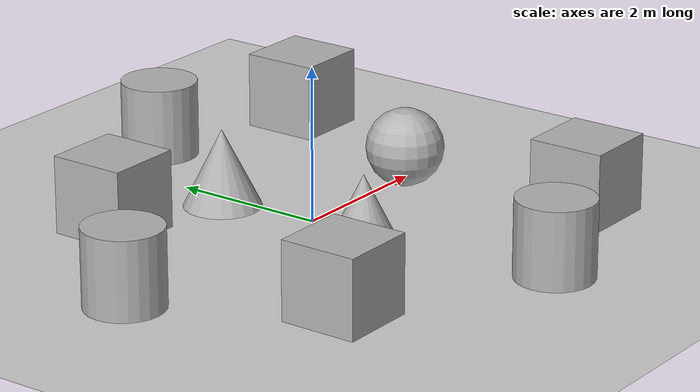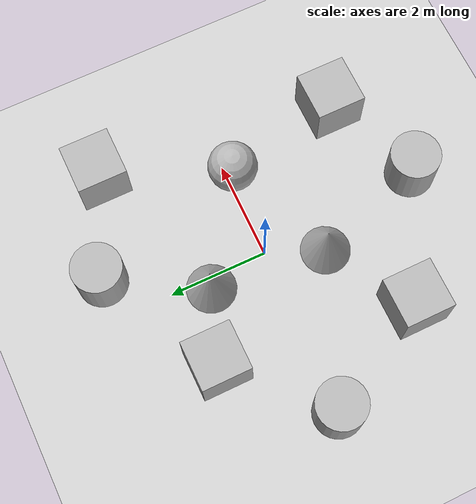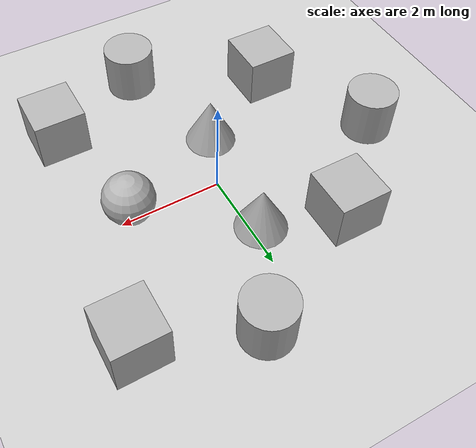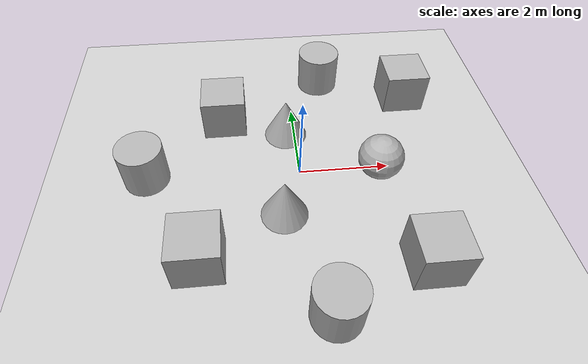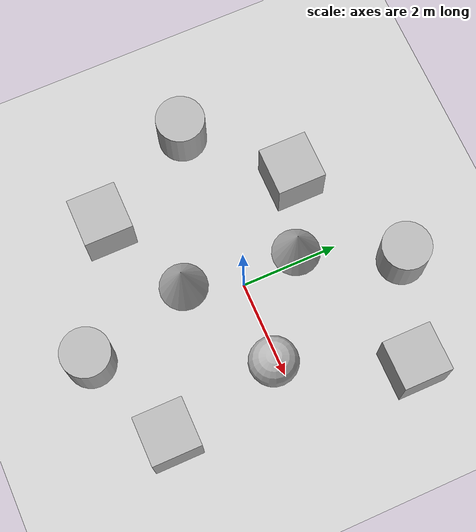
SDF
<sdf version='1.10'>
  <world name='empty'>
    <physics name='1ms' type='ignored'>
      <max_step_size>0.001</max_step_size>
      <real_time_factor>1</real_time_factor>
      <real_time_update_rate>1000</real_time_update_rate>
    </physics>
    <plugin name='gz::sim::systems::Physics' filename='gz-sim-physics-system'/>
    <plugin name='gz::sim::systems::UserCommands' filename='gz-sim-user-commands-system'/>
    <plugin name='gz::sim::systems::SceneBroadcaster' filename='gz-sim-scene-broadcaster-system'/>
    <plugin name='gz::sim::systems::Sensors' filename='gz-sim-sensors-system'>
      <render_engine>ogre2</render_engine>
    </plugin>
    <plugin name="gz::sim::systems::Imu" filename="gz-sim-imu-system" />
    <plugin name='gz::sim::systems::Contact' filename='gz-sim-contact-system'/>
    <gravity>0 0 -9.8000000000000007</gravity>
    <magnetic_field>6.0000000000000002e-06 2.3e-05 -4.1999999999999998e-05</magnetic_field>
    <atmosphere type='adiabatic'/>
    <scene>
      <ambient>0.400000006 0.400000006 0.400000006 1</ambient>
      <background>0.699999988 0.699999988 0.699999988 1</background>
      <shadows>true</shadows>
    </scene>
    <model name='ground_plane'>
      <static>true</static>
      <link name='link'>
        <collision name='collision'>
          <geometry>
            <plane>
              <normal>0 0 1</normal>
              <size>100 100</size>
            </plane>
          </geometry>
          <surface>
            <friction>
              <ode/>
            </friction>
            <bounce/>
            <contact/>
          </surface>
        </collision>
        <visual name='visual'>
          <geometry>
            <plane>
              <normal>0 0 1</normal>
              <size>100 100</size>
            </plane>
          </geometry>
          <material>
            <ambient>0.800000012 0.800000012 0.800000012 1</ambient>
            <diffuse>0.800000012 0.800000012 0.800000012 1</diffuse>
            <specular>0.800000012 0.800000012 0.800000012 1</specular>
          </material>
        </visual>
        <pose>0 0 0 0 0 0</pose>
        <inertial>
          <pose>0 0 0 0 0 0</pose>
          <mass>1</mass>
          <inertia>
            <ixx>1</ixx>
            <ixy>0</ixy>
            <ixz>0</ixz>
            <iyy>1</iyy>
            <iyz>0</iyz>
            <izz>1</izz>
          </inertia>
        </inertial>
        <enable_wind>false</enable_wind>
      </link>
      <pose>0 0 0 0 0 0</pose>
      <self_collide>false</self_collide>
    </model>
    <model name='box'>
      <pose>2.8417219933466216 2.3179857352986479 0.49999999990199806 6.2287739151293738e-22 9.3279666454713669e-22 -3.6315533669320137e-22</pose>
      <link name='box_link'>
        <inertial>
          <inertia>
            <ixx>0.16666</ixx>
            <ixy>0</ixy>
            <ixz>0</ixz>
            <iyy>0.16666</iyy>
            <iyz>0</iyz>
            <izz>0.16666</izz>
          </inertia>
          <mass>1</mass>
          <pose>0 0 0 0 0 0</pose>
        </inertial>
        <collision name='box_collision'>
          <geometry>
            <box>
              <size>1 1 1</size>
            </box>
          </geometry>
          <surface>
            <friction>
              <ode/>
            </friction>
            <bounce/>
            <contact/>
          </surface>
        </collision>
        <visual name='box_visual'>
          <geometry>
            <box>
              <size>1 1 1</size>
            </box>
          </geometry>
          <material>
            <ambient>0.300000012 0.300000012 0.300000012 1</ambient>
            <diffuse>0.699999988 0.699999988 0.699999988 1</diffuse>
            <specular>1 1 1 1</specular>
          </material>
        </visual>
        <pose>0 0 0 0 0 0</pose>
        <enable_wind>false</enable_wind>
      </link>
      <static>false</static>
      <self_collide>false</self_collide>
    </model>
    <model name='box_0'>
      <pose>-1.655056733151445 1.7780978645303196 0.49999999990199806 6.2287739151293738e-22 9.3279666454713669e-22 -3.6315533669320137e-22</pose>
      <link name='box_link'>
        <inertial>
          <inertia>
            <ixx>0.16666</ixx>
            <ixy>0</ixy>
            <ixz>0</ixz>
            <iyy>0.16666</iyy>
            <iyz>0</iyz>
            <izz>0.16666</izz>
          </inertia>
          <mass>1</mass>
          <pose>0 0 0 0 0 0</pose>
        </inertial>
        <collision name='box_collision'>
          <geometry>
            <box>
              <size>1 1 1</size>
            </box>
          </geometry>
          <surface>
            <friction>
              <ode/>
            </friction>
            <bounce/>
            <contact/>
          </surface>
        </collision>
        <visual name='box_visual'>
          <geometry>
            <box>
              <size>1 1 1</size>
            </box>
          </geometry>
          <material>
            <ambient>0.300000012 0.300000012 0.300000012 1</ambient>
            <diffuse>0.699999988 0.699999988 0.699999988 1</diffuse>
            <specular>1 1 1 1</specular>
          </material>
        </visual>
        <pose>0 0 0 0 0 0</pose>
        <enable_wind>false</enable_wind>
      </link>
      <static>false</static>
      <self_collide>false</self_collide>
    </model>
    <model name='box_1'>
      <pose>2.2530130565463509 -2.5291287914817251 0.49999999990199806 6.2287739151293738e-22 9.3279666454713669e-22 -3.6315533669320137e-22</pose>
      <link name='box_link'>
        <inertial>
          <inertia>
            <ixx>0.16666</ixx>
            <ixy>0</ixy>
            <ixz>0</ixz>
            <iyy>0.16666</iyy>
            <iyz>0</iyz>
            <izz>0.16666</izz>
          </inertia>
          <mass>1</mass>
          <pose>0 0 0 0 0 0</pose>
        </inertial>
        <collision name='box_collision'>
          <geometry>
            <box>
              <size>1 1 1</size>
            </box>
          </geometry>
          <surface>
            <friction>
              <ode/>
            </friction>
            <bounce/>
            <contact/>
          </surface>
        </collision>
        <visual name='box_visual'>
          <geometry>
            <box>
              <size>1 1 1</size>
            </box>
          </geometry>
          <material>
            <ambient>0.300000012 0.300000012 0.300000012 1</ambient>
            <diffuse>0.699999988 0.699999988 0.699999988 1</diffuse>
            <specular>1 1 1 1</specular>
          </material>
        </visual>
        <pose>0 0 0 0 0 0</pose>
        <enable_wind>false</enable_wind>
      </link>
      <static>false</static>
      <self_collide>false</self_collide>
    </model>
    <model name='box_2'>
      <pose>-2.1994093670324379 -2.0956478539805325 0.49999999990199806 6.2287739151293738e-22 9.3279666454713669e-22 -3.6315533669320137e-22</pose>
      <link name='box_link'>
        <inertial>
          <inertia>
            <ixx>0.16666</ixx>
            <ixy>0</ixy>
            <ixz>0</ixz>
            <iyy>0.16666</iyy>
            <iyz>0</iyz>
            <izz>0.16666</izz>
          </inertia>
          <mass>1</mass>
          <pose>0 0 0 0 0 0</pose>
        </inertial>
        <collision name='box_collision'>
          <geometry>
            <box>
              <size>1 1 1</size>
            </box>
          </geometry>
          <surface>
            <friction>
              <ode/>
            </friction>
            <bounce/>
            <contact/>
          </surface>
        </collision>
        <visual name='box_visual'>
          <geometry>
            <box>
              <size>1 1 1</size>
            </box>
          </geometry>
          <material>
            <ambient>0.300000012 0.300000012 0.300000012 1</ambient>
            <diffuse>0.699999988 0.699999988 0.699999988 1</diffuse>
            <specular>1 1 1 1</specular>
          </material>
        </visual>
        <pose>0 0 0 0 0 0</pose>
        <enable_wind>false</enable_wind>
      </link>
      <static>false</static>
      <self_collide>false</self_collide>
    </model>
    <model name='sphere'>
      <pose>1.7558753273133232 -0.14177392862852622 0.499999999902001 0 0 0</pose>
      <link name='sphere_link'>
        <inertial>
          <inertia>
            <ixx>0.10000000000000001</ixx>
            <ixy>0</ixy>
            <ixz>0</ixz>
            <iyy>0.10000000000000001</iyy>
            <iyz>0</iyz>
            <izz>0.10000000000000001</izz>
          </inertia>
          <mass>1</mass>
          <pose>0 0 0 0 0 0</pose>
        </inertial>
        <collision name='sphere_collision'>
          <geometry>
            <sphere>
              <radius>0.5</radius>
            </sphere>
          </geometry>
          <surface>
            <friction>
              <ode/>
            </friction>
            <bounce/>
            <contact/>
          </surface>
        </collision>
        <visual name='sphere_visual'>
          <geometry>
            <sphere>
              <radius>0.5</radius>
            </sphere>
          </geometry>
          <material>
            <ambient>0.300000012 0.300000012 0.300000012 1</ambient>
            <diffuse>0.699999988 0.699999988 0.699999988 1</diffuse>
            <specular>1 1 1 1</specular>
          </material>
        </visual>
        <pose>0 0 0 0 0 0</pose>
        <enable_wind>false</enable_wind>
      </link>
      <static>false</static>
      <self_collide>false</self_collide>
    </model>
    <model name='cone'>
      <pose>-0.45892397368634047 -1.1120748308789254 0.49999999993296756 5.254931119316858e-17 -7.7132841033999823e-10 6.969765996526587e-23</pose>
      <link name='cone_link'>
        <inertial>
          <inertia>
            <ixx>0.074999999999999997</ixx>
            <ixy>0</ixy>
            <ixz>0</ixz>
            <iyy>0.074999999999999997</iyy>
            <iyz>0</iyz>
            <izz>0.074999999999999997</izz>
          </inertia>
          <mass>1</mass>
          <pose>0 0 0 0 0 0</pose>
        </inertial>
        <collision name='cone_collision'>
          <geometry>
            <cone>
              <radius>0.5</radius>
              <length>1</length>
            </cone>
          </geometry>
          <surface>
            <friction>
              <ode/>
            </friction>
            <bounce/>
            <contact/>
          </surface>
        </collision>
        <visual name='cone_visual'>
          <geometry>
            <cone>
              <radius>0.5</radius>
              <length>1</length>
            </cone>
          </geometry>
          <material>
            <ambient>0.300000012 0.300000012 0.300000012 1</ambient>
            <diffuse>0.699999988 0.699999988 0.699999988 1</diffuse>
            <specular>1 1 1 1</specular>
          </material>
        </visual>
        <pose>0 0 0 0 0 0</pose>
        <enable_wind>false</enable_wind>
      </link>
      <static>false</static>
      <self_collide>false</self_collide>
    </model>
    <model name='cone_0'>
      <pose>-0.21110311954607025 1.2444863752518083 0.49999999993296756 5.2541471503228405e-17 -7.7132841033694056e-10 -2.8937183272912105e-22</pose>
      <link name='cone_link'>
        <inertial>
          <inertia>
            <ixx>0.074999999999999997</ixx>
            <ixy>0</ixy>
            <ixz>0</ixz>
            <iyy>0.074999999999999997</iyy>
            <iyz>0</iyz>
            <izz>0.074999999999999997</izz>
          </inertia>
          <mass>1</mass>
          <pose>0 0 0 0 0 0</pose>
        </inertial>
        <collision name='cone_collision'>
          <geometry>
            <cone>
              <radius>0.5</radius>
              <length>1</length>
            </cone>
          </geometry>
          <surface>
            <friction>
              <ode/>
            </friction>
            <bounce/>
            <contact/>
          </surface>
        </collision>
        <visual name='cone_visual'>
          <geometry>
            <cone>
              <radius>0.5</radius>
              <length>1</length>
            </cone>
          </geometry>
          <material>
            <ambient>0.300000012 0.300000012 0.300000012 1</ambient>
            <diffuse>0.699999988 0.699999988 0.699999988 1</diffuse>
            <specular>1 1 1 1</specular>
          </material>
        </visual>
        <pose>0 0 0 0 0 0</pose>
        <enable_wind>false</enable_wind>
      </link>
      <static>false</static>
      <self_collide>false</self_collide>
    </model>
    <model name='cylinder'>
      <pose>-3.4181480821354935 0.11779292196676421 0.49999942638036005 -1.4887742917207412e-19 5.1557227785463672e-19 -1.1031033120288706e-20</pose>
      <link name='cylinder_link'>
        <inertial>
          <inertia>
            <ixx>0.14580000000000001</ixx>
            <ixy>0</ixy>
            <ixz>0</ixz>
            <iyy>0.14580000000000001</iyy>
            <iyz>0</iyz>
            <izz>0.125</izz>
          </inertia>
          <mass>1</mass>
          <pose>0 0 0 0 0 0</pose>
        </inertial>
        <collision name='cylinder_collision'>
          <geometry>
            <cylinder>
              <radius>0.5</radius>
              <length>1</length>
            </cylinder>
          </geometry>
          <surface>
            <friction>
              <ode/>
            </friction>
            <bounce/>
            <contact/>
          </surface>
        </collision>
        <visual name='cylinder_visual'>
          <geometry>
            <cylinder>
              <radius>0.5</radius>
              <length>1</length>
            </cylinder>
          </geometry>
          <material>
            <ambient>0.300000012 0.300000012 0.300000012 1</ambient>
            <diffuse>0.699999988 0.699999988 0.699999988 1</diffuse>
            <specular>1 1 1 1</specular>
          </material>
        </visual>
        <pose>0 0 0 0 0 0</pose>
        <enable_wind>false</enable_wind>
      </link>
      <static>false</static>
      <self_collide>false</self_collide>
    </model>
    <model name='cylinder_0'>
      <pose>0.81116111290291459 3.0972589908019872 0.49999942638036005 4.6913955208644904e-19 1.4926644490456646e-19 1.5857647077498356e-20</pose>
      <link name='cylinder_link'>
        <inertial>
          <inertia>
            <ixx>0.14580000000000001</ixx>
            <ixy>0</ixy>
            <ixz>0</ixz>
            <iyy>0.14580000000000001</iyy>
            <iyz>0</iyz>
            <izz>0.125</izz>
          </inertia>
          <mass>1</mass>
          <pose>0 0 0 0 0 0</pose>
        </inertial>
        <collision name='cylinder_collision'>
          <geometry>
            <cylinder>
              <radius>0.5</radius>
              <length>1</length>
            </cylinder>
          </geometry>
          <surface>
            <friction>
              <ode/>
            </friction>
            <bounce/>
            <contact/>
          </surface>
        </collision>
        <visual name='cylinder_visual'>
          <geometry>
            <cylinder>
              <radius>0.5</radius>
              <length>1</length>
            </cylinder>
          </geometry>
          <material>
            <ambient>0.300000012 0.300000012 0.300000012 1</ambient>
            <diffuse>0.699999988 0.699999988 0.699999988 1</diffuse>
            <specular>1 1 1 1</specular>
          </material>
        </visual>
        <pose>0 0 0 0 0 0</pose>
        <enable_wind>false</enable_wind>
      </link>
      <static>false</static>
      <self_collide>false</self_collide>
    </model>
    <model name='cylinder_1'>
      <pose>0.25970265554276373 -3.3643063096518571 0.49999942638036005 5.7502612727921683e-19 -2.2399333310473928e-20 -6.5055866355747704e-21</pose>
      <link name='cylinder_link'>
        <inertial>
          <inertia>
            <ixx>0.14580000000000001</ixx>
            <ixy>0</ixy>
            <ixz>0</ixz>
            <iyy>0.14580000000000001</iyy>
            <iyz>0</iyz>
            <izz>0.125</izz>
          </inertia>
          <mass>1</mass>
          <pose>0 0 0 0 0 0</pose>
        </inertial>
        <collision name='cylinder_collision'>
          <geometry>
            <cylinder>
              <radius>0.5</radius>
              <length>1</length>
            </cylinder>
          </geometry>
          <surface>
            <friction>
              <ode/>
            </friction>
            <bounce/>
            <contact/>
          </surface>
        </collision>
        <visual name='cylinder_visual'>
          <geometry>
            <cylinder>
              <radius>0.5</radius>
              <length>1</length>
            </cylinder>
          </geometry>
          <material>
            <ambient>0.300000012 0.300000012 0.300000012 1</ambient>
            <diffuse>0.699999988 0.699999988 0.699999988 1</diffuse>
            <specular>1 1 1 1</specular>
          </material>
        </visual>
        <pose>0 0 0 0 0 0</pose>
        <enable_wind>false</enable_wind>
      </link>
      <static>false</static>
      <self_collide>false</self_collide>
    </model>
    <light name='sun' type='directional'>
      <pose>0 0 10 0 0 0</pose>
      <cast_shadows>true</cast_shadows>
      <intensity>1</intensity>
      <direction>-0.5 0.10000000000000001 -0.90000000000000002</direction>
      <diffuse>0.800000012 0.800000012 0.800000012 1</diffuse>
      <specular>0.200000003 0.200000003 0.200000003 1</specular>
      <attenuation>
        <range>1000</range>
        <linear>0.01</linear>
        <constant>0.90000000000000002</constant>
        <quadratic>0.001</quadratic>
      </attenuation>
      <spot>
        <inner_angle>0</inner_angle>
        <outer_angle>0</outer_angle>
        <falloff>0</falloff>
      </spot>
    </light>
  </world>
</sdf>
